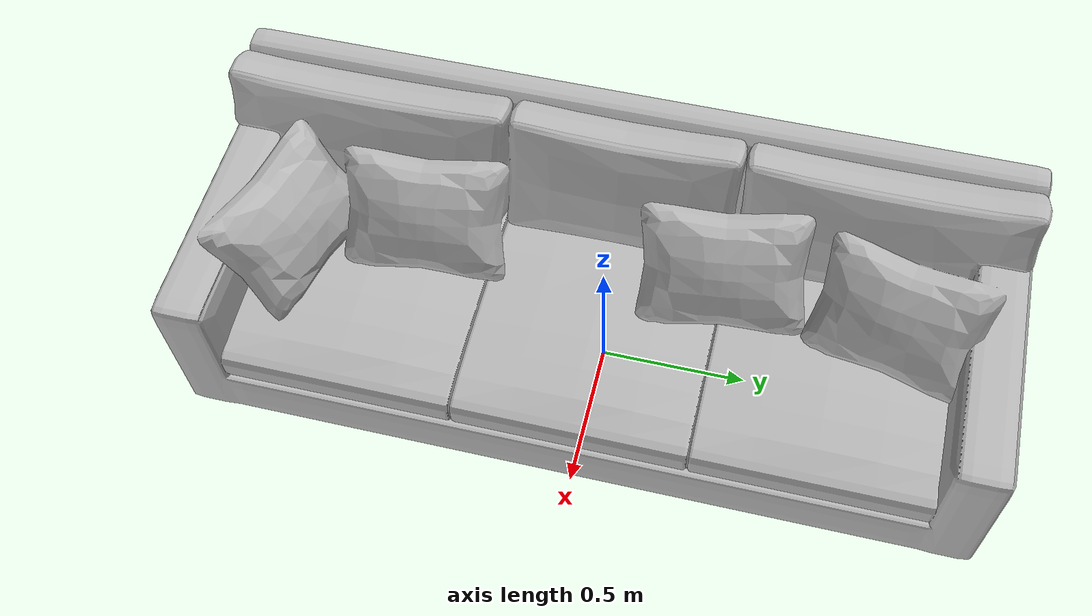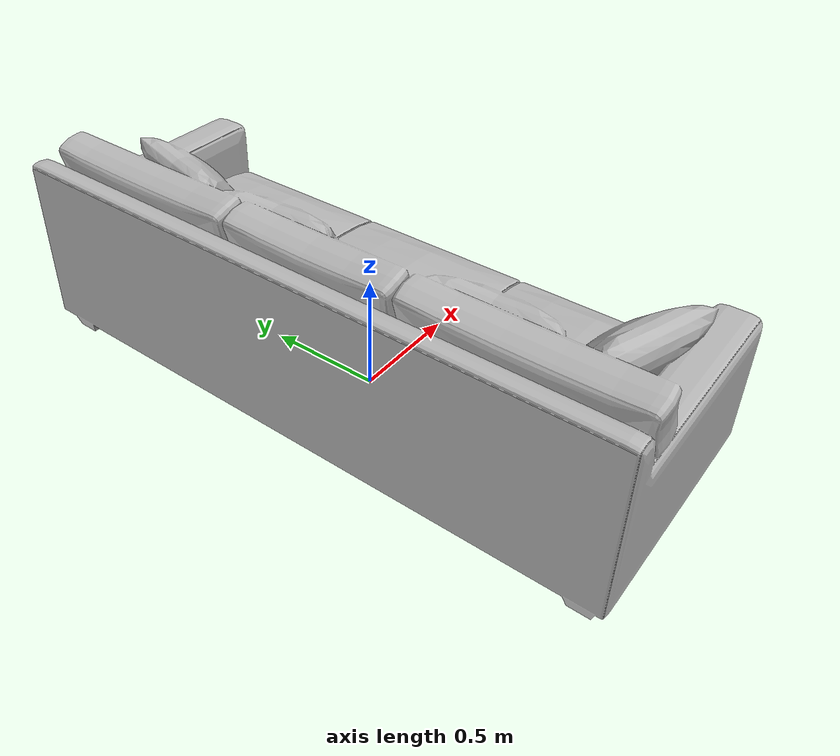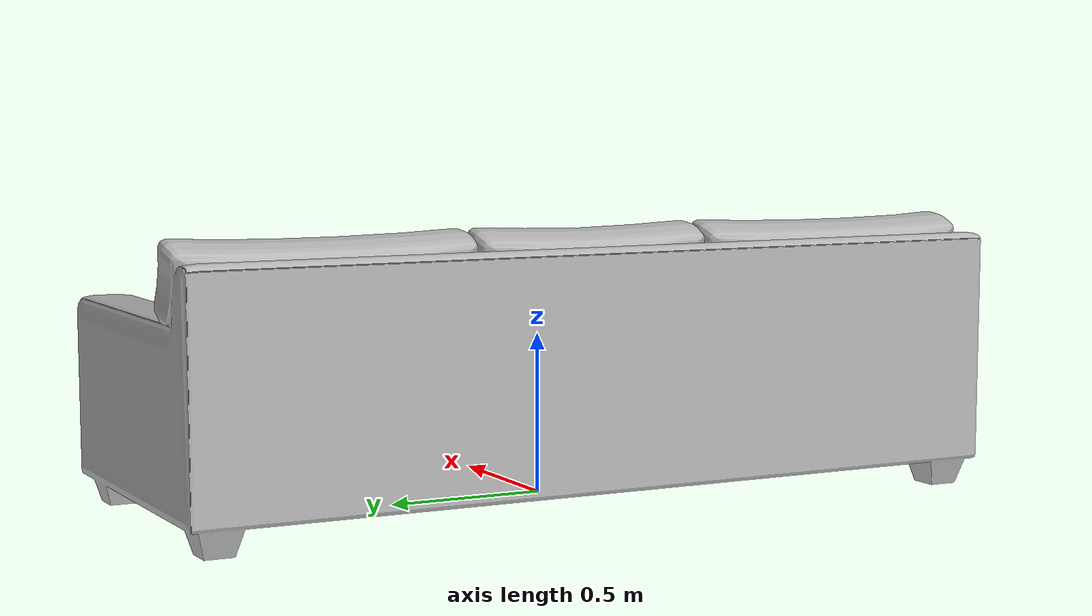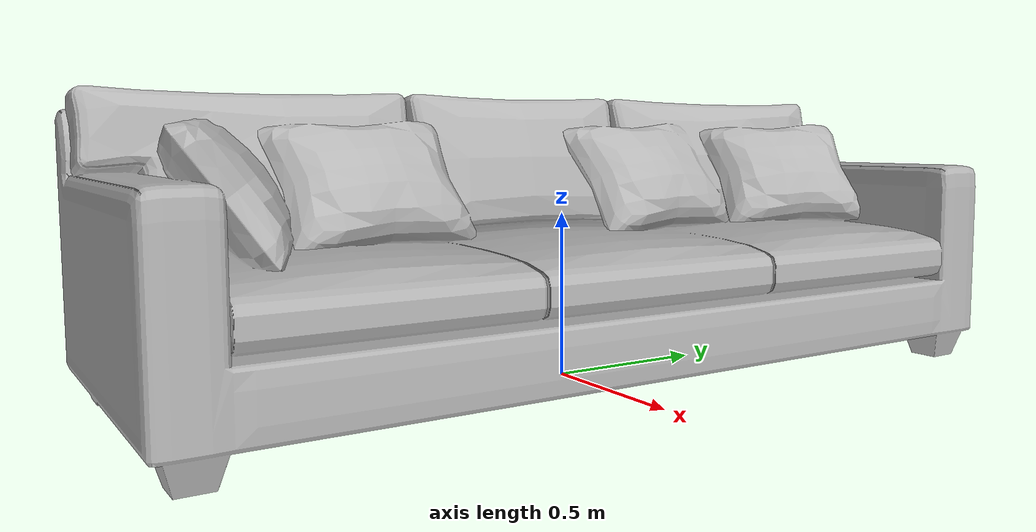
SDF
<?xml version='1.0'?>
<sdf version='1.4'>
  <model name='s__1290'>
    <pose>0 0 0 0 0 0</pose>
    <static>true</static>
    <link name='link'>
      <collision name='collision'>
        <pose>0 0 0 0 0 0</pose>
        <geometry>
          <box>
            <size>1.05 2.64995 2</size>
          </box>
        </geometry>
      </collision>
      <visual name='visual'>
        <pose>0 0 0 0 0 0</pose>
        <geometry>
          <mesh><uri>model://s__1290/s__1290.dae</uri></mesh>
        </geometry>
      </visual>
    </link>
  </model>
</sdf>
